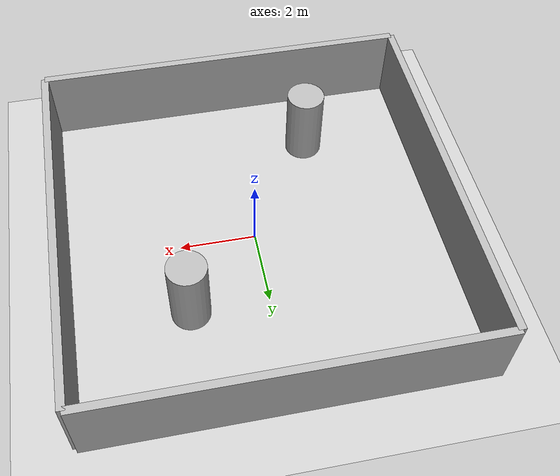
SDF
<?xml version="1.0" ?>
<sdf version="1.6">
  <world name="slam_test_world">
    <include>
      <uri>model://sun</uri>
    </include>
    <include>
      <uri>model://ground_plane</uri>
    </include>

    <model name="paredes">
      <static>true</static>
      <link name="link">
        <collision name="c1"><pose>0 5 1 0 0 0</pose><geometry><box><size>10 0.2 2</size></box></geometry></collision>
        <visual name="v1"><pose>0 5 1 0 0 0</pose><geometry><box><size>10 0.2 2</size></box></geometry></visual>

        <collision name="c2"><pose>0 -5 1 0 0 0</pose><geometry><box><size>10 0.2 2</size></box></geometry></collision>
        <visual name="v2"><pose>0 -5 1 0 0 0</pose><geometry><box><size>10 0.2 2</size></box></geometry></visual>

        <collision name="c3"><pose>5 0 1 0 0 0</pose><geometry><box><size>0.2 10 2</size></box></geometry></collision>
        <visual name="v3"><pose>5 0 1 0 0 0</pose><geometry><box><size>0.2 10 2</size></box></geometry></visual>

        <collision name="c4"><pose>-5 0 1 0 0 0</pose><geometry><box><size>0.2 10 2</size></box></geometry></collision>
        <visual name="v4"><pose>-5 0 1 0 0 0</pose><geometry><box><size>0.2 10 2</size></box></geometry></visual>
      </link>
    </model>

    <model name="columna1">
      <static>true</static><pose>2 2 1 0 0 0</pose>
      <link name="link">
        <collision name="c"><geometry><cylinder><radius>0.5</radius><length>2</length></cylinder></geometry></collision>
        <visual name="v"><geometry><cylinder><radius>0.5</radius><length>2</length></cylinder></geometry></visual>
      </link>
    </model>

    <model name="columna2">
      <static>true</static><pose>-2 -3 1 0 0 0</pose>
      <link name="link">
        <collision name="c"><geometry><cylinder><radius>0.5</radius><length>2</length></cylinder></geometry></collision>
        <visual name="v"><geometry><cylinder><radius>0.5</radius><length>2</length></cylinder></geometry></visual>
      </link>
    </model>
  </world>
</sdf>
